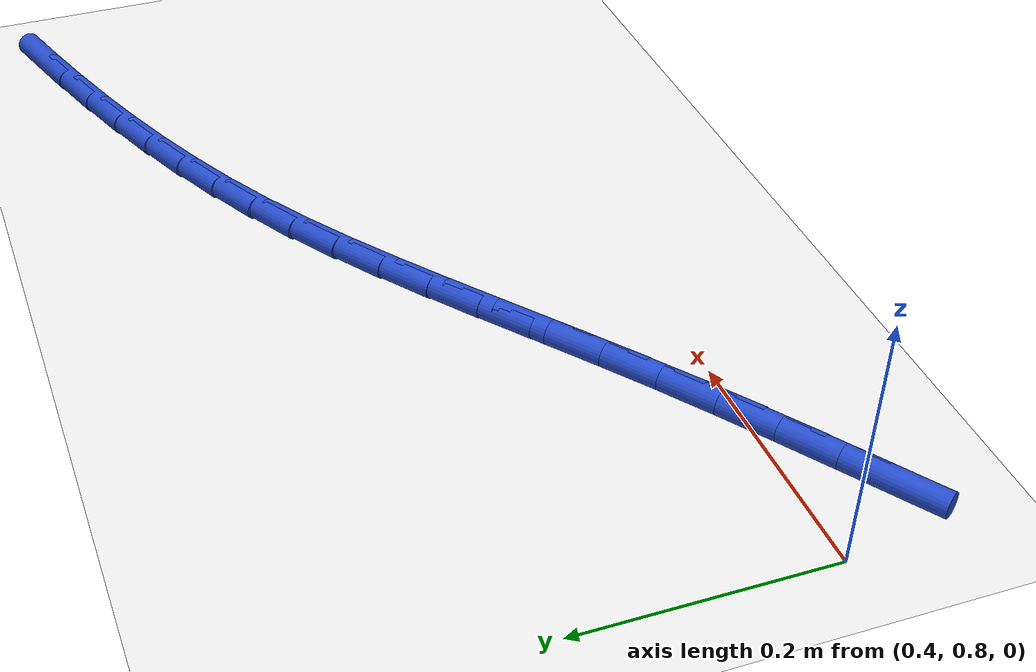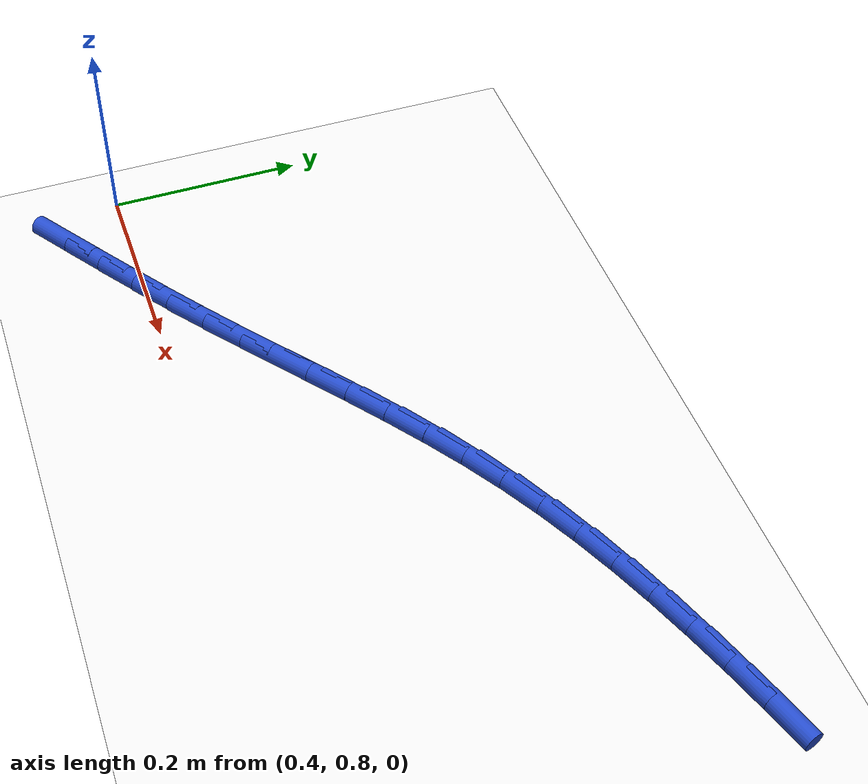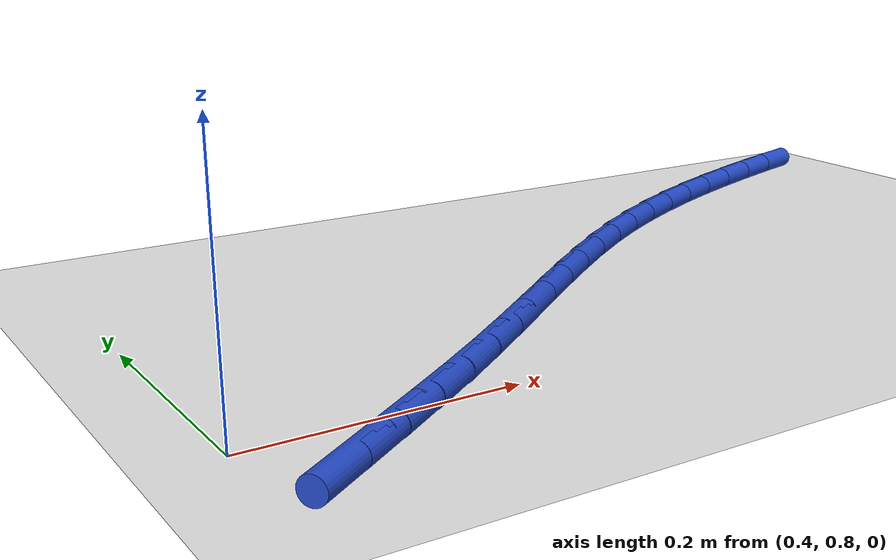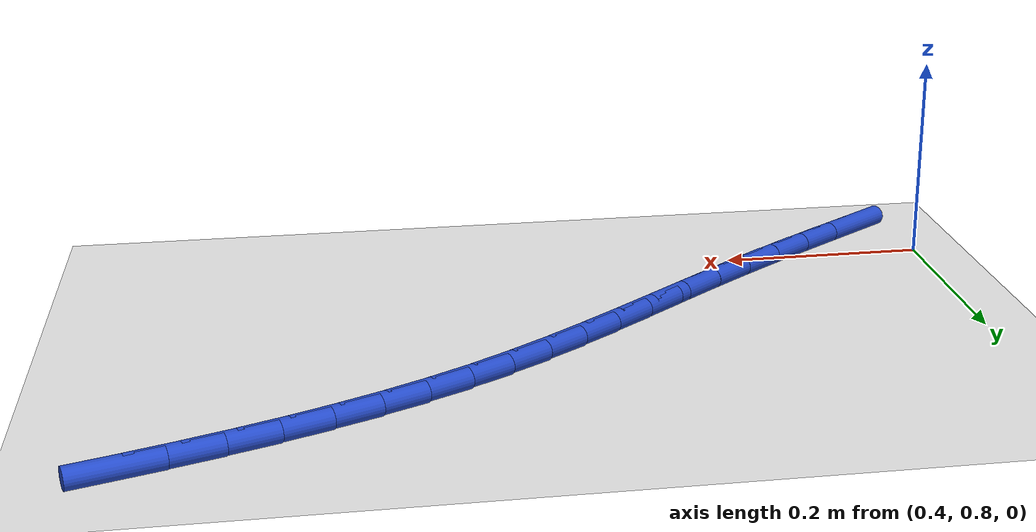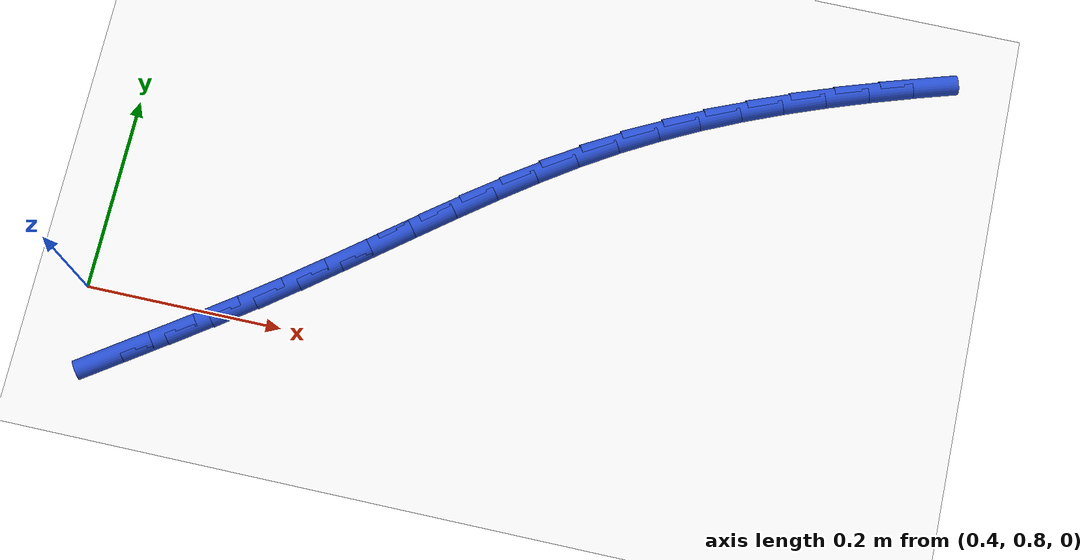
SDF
<sdf version="1.6">
 <world name="default">
  <model name="ground_plane">
   <static>1</static>
   <link name="link">
    <collision name="collision">
     <geometry><plane><normal>0 0 1</normal><size>100 100</size></plane></geometry>
     <surface><friction><ode><mu>100</mu><mu2>50</mu2></ode></friction></surface>
    </collision>
    <visual name="visual">
     <cast_shadows>0</cast_shadows>
     <geometry><plane><normal>0 0 1</normal><size>100 100</size></plane></geometry>
     <material>
      <script><uri>file://media/materials/scripts/gazebo.material</uri><name>Gazebo/WhiteGlow</name></script>
     </material>
    </visual>
   </link>
  </model>
  <model name="line">
   <link name="link_20">
    <pose>0.4464660689837332 0.7362873026970937 0.01 0 1.57 0.6042024837390428</pose>
    <collision name="collision">
     <geometry><cylinder><radius>0.01</radius><length>0.08</length></cylinder></geometry>
    </collision>
    <visual name="visual">
     <material>
      <script><name>Gazebo/Blue</name><uri>file://media/materials/scripts/gazebo.material</uri></script>
     </material>
     <geometry><cylinder><radius>0.01</radius><length>0.08</length></cylinder></geometry>
    </visual>
   </link>
   <link name="link_21">
    <pose>0.48542489935821537 0.7631815206982783 0.01 0 1.57 0.6079185684136864</pose>
    <collision name="collision">
     <geometry><cylinder><radius>0.01</radius><length>0.08</length></cylinder></geometry>
    </collision>
    <visual name="visual">
     <material>
      <script><name>Gazebo/Blue</name><uri>file://media/materials/scripts/gazebo.material</uri></script>
     </material>
     <geometry><cylinder><radius>0.01</radius><length>0.08</length></cylinder></geometry>
    </visual>
   </link>
   <link name="link_22">
    <pose>0.5242570180894797 0.7902018864441716 0.01 0 1.57 0.6179025495465913</pose>
    <collision name="collision">
     <geometry><cylinder><radius>0.01</radius><length>0.08</length></cylinder></geometry>
    </collision>
    <visual name="visual">
     <material>
      <script><name>Gazebo/Blue</name><uri>file://media/materials/scripts/gazebo.material</uri></script>
     </material>
     <geometry><cylinder><radius>0.01</radius><length>0.08</length></cylinder></geometry>
    </visual>
   </link>
   <link name="link_23">
    <pose>0.5627001974848096 0.8175252718863099 0.01 0 1.57 0.6342452499665662</pose>
    <collision name="collision">
     <geometry><cylinder><radius>0.01</radius><length>0.08</length></cylinder></geometry>
    </collision>
    <visual name="visual">
     <material>
      <script><name>Gazebo/Blue</name><uri>file://media/materials/scripts/gazebo.material</uri></script>
     </material>
     <geometry><cylinder><radius>0.01</radius><length>0.08</length></cylinder></geometry>
    </visual>
   </link>
   <link name="link_24">
    <pose>0.6004933769158011 0.8453273336555412 0.01 0 1.57 0.6526459985040423</pose>
    <collision name="collision">
     <geometry><cylinder><radius>0.01</radius><length>0.08</length></cylinder></geometry>
    </collision>
    <visual name="visual">
     <material>
      <script><name>Gazebo/Blue</name><uri>file://media/materials/scripts/gazebo.material</uri></script>
     </material>
     <geometry><cylinder><radius>0.01</radius><length>0.08</length></cylinder></geometry>
    </visual>
   </link>
   <link name="link_25">
    <pose>0.6375217776997384 0.8736313978957929 0.01 0 1.57 0.6643143220982112</pose>
    <collision name="collision">
     <geometry><cylinder><radius>0.01</radius><length>0.08</length></cylinder></geometry>
    </collision>
    <visual name="visual">
     <material>
      <script><name>Gazebo/Blue</name><uri>file://media/materials/scripts/gazebo.material</uri></script>
     </material>
     <geometry><cylinder><radius>0.01</radius><length>0.08</length></cylinder></geometry>
    </visual>
   </link>
   <link name="link_26">
    <pose>0.6739574894532931 0.9021620608734133 0.01 0 1.57 0.6680812171025552</pose>
    <collision name="collision">
     <geometry><cylinder><radius>0.01</radius><length>0.08</length></cylinder></geometry>
    </collision>
    <visual name="visual">
     <material>
      <script><name>Gazebo/Blue</name><uri>file://media/materials/scripts/gazebo.material</uri></script>
     </material>
     <geometry><cylinder><radius>0.01</radius><length>0.08</length></cylinder></geometry>
    </visual>
   </link>
   <link name="link_27">
    <pose>0.7100059506109205 0.9306091911128742 0.01 0 1.57 0.6637679730141532</pose>
    <collision name="collision">
     <geometry><cylinder><radius>0.01</radius><length>0.08</length></cylinder></geometry>
    </collision>
    <visual name="visual">
     <material>
      <script><name>Gazebo/Blue</name><uri>file://media/materials/scripts/gazebo.material</uri></script>
     </material>
     <geometry><cylinder><radius>0.01</radius><length>0.08</length></cylinder></geometry>
    </visual>
   </link>
   <link name="link_28">
    <pose>0.745872599607075 0.9586626571386466 0.01 0 1.57 0.6511595499071906</pose>
    <collision name="collision">
     <geometry><cylinder><radius>0.01</radius><length>0.08</length></cylinder></geometry>
    </collision>
    <visual name="visual">
     <material>
      <script><name>Gazebo/Blue</name><uri>file://media/materials/scripts/gazebo.material</uri></script>
     </material>
     <geometry><cylinder><radius>0.01</radius><length>0.08</length></cylinder></geometry>
    </visual>
   </link>
   <link name="link_29">
    <pose>0.7817628748762113 0.9860123274752021 0.01 0 1.57 0.6300108527167803</pose>
    <collision name="collision">
     <geometry><cylinder><radius>0.01</radius><length>0.08</length></cylinder></geometry>
    </collision>
    <visual name="visual">
     <material>
      <script><name>Gazebo/Blue</name><uri>file://media/materials/scripts/gazebo.material</uri></script>
     </material>
     <geometry><cylinder><radius>0.01</radius><length>0.08</length></cylinder></geometry>
    </visual>
   </link>
   <link name="link_30">
    <pose>0.8178822148527845 1.0123480706470118 0.01 0 1.57 0.6000718335855401</pose>
    <collision name="collision">
     <geometry><cylinder><radius>0.01</radius><length>0.08</length></cylinder></geometry>
    </collision>
    <visual name="visual">
     <material>
      <script><name>Gazebo/Blue</name><uri>file://media/materials/scripts/gazebo.material</uri></script>
     </material>
     <geometry><cylinder><radius>0.01</radius><length>0.08</length></cylinder></geometry>
    </visual>
   </link>
   <link name="link_31">
    <pose>0.8544360579712497 1.0373597551785478 0.01 0 1.57 0.5611900027718707</pose>
    <collision name="collision">
     <geometry><cylinder><radius>0.01</radius><length>0.08</length></cylinder></geometry>
    </collision>
    <visual name="visual">
     <material>
      <script><name>Gazebo/Blue</name><uri>file://media/materials/scripts/gazebo.material</uri></script>
     </material>
     <geometry><cylinder><radius>0.01</radius><length>0.08</length></cylinder></geometry>
    </visual>
   </link>
   <link name="link_32">
    <pose>0.8916292328618419 1.0607397020099958 0.01 0 1.57 0.517305601322966</pose>
    <collision name="collision">
     <geometry><cylinder><radius>0.01</radius><length>0.08</length></cylinder></geometry>
    </collision>
    <visual name="visual">
     <material>
      <script><name>Gazebo/Blue</name><uri>file://media/materials/scripts/gazebo.material</uri></script>
     </material>
     <geometry><cylinder><radius>0.01</radius><length>0.08</length></cylinder></geometry>
    </visual>
   </link>
   <link name="link_33">
    <pose>0.9296224959135643 1.08235747496298 0.01 0 1.57 0.475473525729647</pose>
    <collision name="collision">
     <geometry><cylinder><radius>0.01</radius><length>0.08</length></cylinder></geometry>
    </collision>
    <visual name="visual">
     <material>
      <script><name>Gazebo/Blue</name><uri>file://media/materials/scripts/gazebo.material</uri></script>
     </material>
     <geometry><cylinder><radius>0.01</radius><length>0.08</length></cylinder></geometry>
    </visual>
   </link>
   <link name="link_34">
    <pose>0.9685036007317257 1.1023762290941839 0.01 0 1.57 0.4369134625742217</pose>
    <collision name="collision">
     <geometry><cylinder><radius>0.01</radius><length>0.08</length></cylinder></geometry>
    </collision>
    <visual name="visual">
     <material>
      <script><name>Gazebo/Blue</name><uri>file://media/materials/scripts/gazebo.material</uri></script>
     </material>
     <geometry><cylinder><radius>0.01</radius><length>0.08</length></cylinder></geometry>
    </visual>
   </link>
   <link name="link_35">
    <pose>1.0083534389453437 1.1209867158886937 0.01 0 1.57 0.40209219930529816</pose>
    <collision name="collision">
     <geometry><cylinder><radius>0.01</radius><length>0.08</length></cylinder></geometry>
    </collision>
    <visual name="visual">
     <material>
      <script><name>Gazebo/Blue</name><uri>file://media/materials/scripts/gazebo.material</uri></script>
     </material>
     <geometry><cylinder><radius>0.01</radius><length>0.08</length></cylinder></geometry>
    </visual>
   </link>
   <link name="link_36">
    <pose>1.0492529021834383 1.138379686831598 0.01 0 1.57 0.37132965152351044</pose>
    <collision name="collision">
     <geometry><cylinder><radius>0.01</radius><length>0.08</length></cylinder></geometry>
    </collision>
    <visual name="visual">
     <material>
      <script><name>Gazebo/Blue</name><uri>file://media/materials/scripts/gazebo.material</uri></script>
     </material>
     <geometry><cylinder><radius>0.01</radius><length>0.08</length></cylinder></geometry>
    </visual>
   </link>
   <link name="link_37">
    <pose>1.0912828820750284 1.1547458934079846 0.01 0 1.57 0.3448039044892352</pose>
    <collision name="collision">
     <geometry><cylinder><radius>0.01</radius><length>0.08</length></cylinder></geometry>
    </collision>
    <visual name="visual">
     <material>
      <script><name>Gazebo/Blue</name><uri>file://media/materials/scripts/gazebo.material</uri></script>
     </material>
     <geometry><cylinder><radius>0.01</radius><length>0.08</length></cylinder></geometry>
    </visual>
   </link>
   <link name="link_38">
    <pose>1.134524270249133 1.1702760871029407 0.01 0 1.57 0.32256617867204873</pose>
    <collision name="collision">
     <geometry><cylinder><radius>0.01</radius><length>0.08</length></cylinder></geometry>
    </collision>
    <visual name="visual">
     <material>
      <script><name>Gazebo/Blue</name><uri>file://media/materials/scripts/gazebo.material</uri></script>
     </material>
     <geometry><cylinder><radius>0.01</radius><length>0.08</length></cylinder></geometry>
    </visual>
   </link>
   <link name="link_39">
    <pose>1.1790579583347713 1.185161019401555 0.01 0 1.57 0.30456135553817776</pose>
    <collision name="collision">
     <geometry><cylinder><radius>0.01</radius><length>0.08</length></cylinder></geometry>
    </collision>
    <visual name="visual">
     <material>
      <script><name>Gazebo/Blue</name><uri>file://media/materials/scripts/gazebo.material</uri></script>
     </material>
     <geometry><cylinder><radius>0.01</radius><length>0.08</length></cylinder></geometry>
    </visual>
   </link>
  </model>
 </world>
</sdf>
